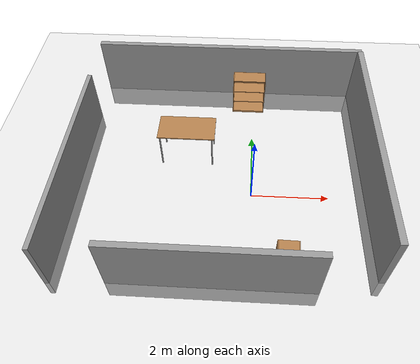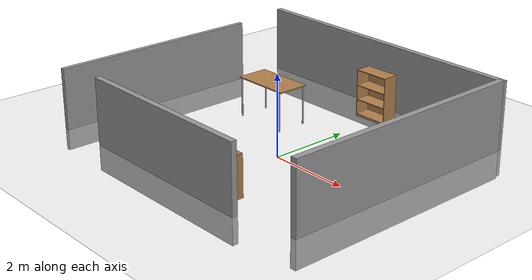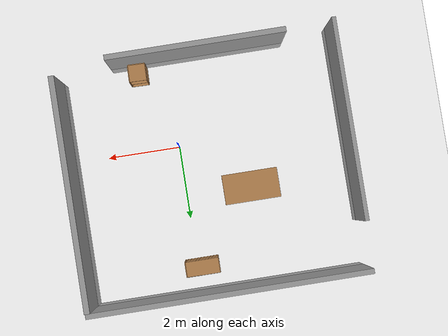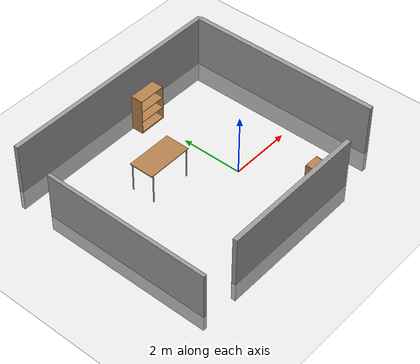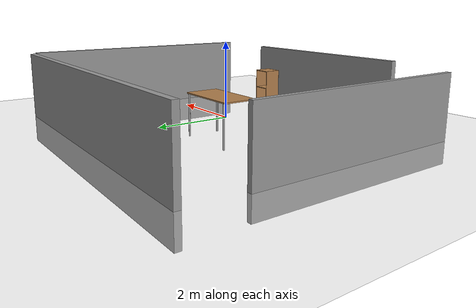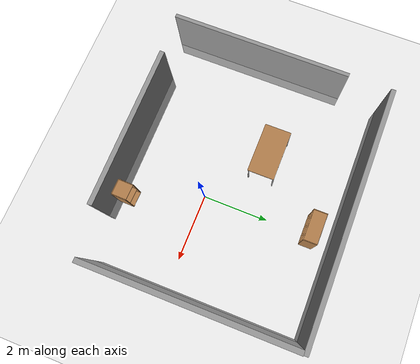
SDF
<sdf version="1.7">
 <world name="default">
  <light name="sun" type="directional">
   <pose>0 0 10 0 -0 0</pose>
   <diffuse>0.8 0.8 0.8 1</diffuse>
   <specular>0.2 0.2 0.2 1</specular>
   <attenuation>
    <range>1000</range>
    <constant>0.9</constant>
    <linear>0.01</linear>
    <quadratic>0.001</quadratic>
   </attenuation>
   <direction>-0.5 0.1 -0.9</direction>
   <spot><inner_angle>0</inner_angle><outer_angle>0</outer_angle><falloff>0</falloff></spot>
  </light>
  <model name="ground_plane">
   <static>1</static>
   <link name="link">
    <collision name="collision">
     <geometry><plane><normal>0 0 1</normal><size>100 100</size></plane></geometry>
     <surface>
      <contact><collide_bitmask>65535</collide_bitmask></contact>
      <friction><ode><mu>100</mu><mu2>50</mu2></ode></friction>
     </surface>
    </collision>
    <visual name="visual">
     <cast_shadows>0</cast_shadows>
     <geometry><plane><normal>0 0 1</normal><size>100 100</size></plane></geometry>
     <material>
      <script><uri>file://media/materials/scripts/gazebo.material</uri><name>Gazebo/Grey</name></script>
     </material>
    </visual>
   </link>
  </model>
  <gravity>0 0 -9.8</gravity>
  <magnetic_field>6e-06 2.3e-05 -4.2e-05</magnetic_field>
  <atmosphere type="adiabatic"/>
  <physics type="ode">
   <max_step_size>0.001</max_step_size>
   <real_time_factor>1</real_time_factor>
   <real_time_update_rate>1000</real_time_update_rate>
  </physics>
  <scene><ambient>0.4 0.4 0.4 1</ambient><background>0.7 0.7 0.7 1</background><shadows>1</shadows></scene>
  <spherical_coordinates>
   <surface_model>EARTH_WGS84</surface_model>
   <latitude_deg>0</latitude_deg>
   <longitude_deg>0</longitude_deg>
   <elevation>0</elevation>
   <heading_deg>0</heading_deg>
  </spherical_coordinates>
  <model name="table">
   <static>1</static>
   <link name="link">
    <collision name="surface">
     <pose>0 0 1 0 -0 0</pose>
     <geometry><box><size>1.5 0.8 0.03</size></box></geometry>
     <surface><friction><ode><mu>0.6</mu><mu2>0.6</mu2></ode></friction></surface>
    </collision>
    <visual name="visual1">
     <pose>0 0 1 0 -0 0</pose>
     <geometry><box><size>1.5 0.8 0.03</size></box></geometry>
     <material>
      <script><uri>file://media/materials/scripts/gazebo.material</uri><name>Gazebo/Wood</name></script>
     </material>
    </visual>
    <collision name="front_left_leg">
     <pose>0.68 0.38 0.5 0 -0 0</pose>
     <geometry><cylinder><radius>0.02</radius><length>1</length></cylinder></geometry>
    </collision>
    <visual name="front_left_leg">
     <pose>0.68 0.38 0.5 0 -0 0</pose>
     <geometry><cylinder><radius>0.02</radius><length>1</length></cylinder></geometry>
     <material>
      <script><uri>file://media/materials/scripts/gazebo.material</uri><name>Gazebo/Grey</name></script>
     </material>
    </visual>
    <collision name="front_right_leg">
     <pose>0.68 -0.38 0.5 0 -0 0</pose>
     <geometry><cylinder><radius>0.02</radius><length>1</length></cylinder></geometry>
    </collision>
    <visual name="front_right_leg">
     <pose>0.68 -0.38 0.5 0 -0 0</pose>
     <geometry><cylinder><radius>0.02</radius><length>1</length></cylinder></geometry>
     <material>
      <script><uri>file://media/materials/scripts/gazebo.material</uri><name>Gazebo/Grey</name></script>
     </material>
    </visual>
    <collision name="back_right_leg">
     <pose>-0.68 -0.38 0.5 0 -0 0</pose>
     <geometry><cylinder><radius>0.02</radius><length>1</length></cylinder></geometry>
    </collision>
    <visual name="back_right_leg">
     <pose>-0.68 -0.38 0.5 0 -0 0</pose>
     <geometry><cylinder><radius>0.02</radius><length>1</length></cylinder></geometry>
     <material>
      <script><uri>file://media/materials/scripts/gazebo.material</uri><name>Gazebo/Grey</name></script>
     </material>
    </visual>
    <collision name="back_left_leg">
     <pose>-0.68 0.38 0.5 0 -0 0</pose>
     <geometry><cylinder><radius>0.02</radius><length>1</length></cylinder></geometry>
    </collision>
    <visual name="back_left_leg">
     <pose>-0.68 0.38 0.5 0 -0 0</pose>
     <geometry><cylinder><radius>0.02</radius><length>1</length></cylinder></geometry>
     <material>
      <script><uri>file://media/materials/scripts/gazebo.material</uri><name>Gazebo/Grey</name></script>
     </material>
    </visual>
   </link>
   <pose>-1.7546 1.39164 0 0 -0 0</pose>
  </model>
  <model name="bookshelf">
   <static>1</static>
   <link name="link">
    <inertial><mass>1</mass></inertial>
    <collision name="back">
     <pose>0 0.005 0.6 0 -0 0</pose>
     <geometry><box><size>0.9 0.01 1.2</size></box></geometry>
    </collision>
    <visual name="visual1">
     <pose>0 0.005 0.6 0 -0 0</pose>
     <geometry><box><size>0.9 0.01 1.2</size></box></geometry>
     <material>
      <script><uri>file://media/materials/scripts/gazebo.material</uri><name>Gazebo/Wood</name></script>
     </material>
    </visual>
    <collision name="left_side">
     <pose>0.45 -0.195 0.6 0 -0 0</pose>
     <geometry><box><size>0.02 0.4 1.2</size></box></geometry>
    </collision>
    <visual name="visual2">
     <pose>0.45 -0.195 0.6 0 -0 0</pose>
     <geometry><box><size>0.02 0.4 1.2</size></box></geometry>
     <material>
      <script><uri>file://media/materials/scripts/gazebo.material</uri><name>Gazebo/Wood</name></script>
     </material>
    </visual>
    <collision name="right_side">
     <pose>-0.45 -0.195 0.6 0 -0 0</pose>
     <geometry><box><size>0.02 0.4 1.2</size></box></geometry>
    </collision>
    <visual name="visual3">
     <pose>-0.45 -0.195 0.6 0 -0 0</pose>
     <geometry><box><size>0.02 0.4 1.2</size></box></geometry>
     <material>
      <script><uri>file://media/materials/scripts/gazebo.material</uri><name>Gazebo/Wood</name></script>
     </material>
    </visual>
    <collision name="bottom">
     <pose>0 -0.195 0.03 0 -0 0</pose>
     <geometry><box><size>0.88 0.4 0.06</size></box></geometry>
    </collision>
    <visual name="visual4">
     <pose>0 -0.195 0.03 0 -0 0</pose>
     <geometry><box><size>0.88 0.4 0.06</size></box></geometry>
     <material>
      <script><uri>file://media/materials/scripts/gazebo.material</uri><name>Gazebo/Wood</name></script>
     </material>
    </visual>
    <collision name="top">
     <pose>0 -0.195 1.19 0 -0 0</pose>
     <geometry><box><size>0.88 0.4 0.02</size></box></geometry>
    </collision>
    <visual name="visual5">
     <pose>0 -0.195 1.19 0 -0 0</pose>
     <geometry><box><size>0.88 0.4 0.02</size></box></geometry>
     <material>
      <script><uri>file://media/materials/scripts/gazebo.material</uri><name>Gazebo/Wood</name></script>
     </material>
    </visual>
    <collision name="low_shelf">
     <pose>0 -0.195 0.43 0 -0 0</pose>
     <geometry><box><size>0.88 0.4 0.02</size></box></geometry>
    </collision>
    <visual name="visual6">
     <pose>0 -0.195 0.43 0 -0 0</pose>
     <geometry><box><size>0.88 0.4 0.02</size></box></geometry>
     <material>
      <script><uri>file://media/materials/scripts/gazebo.material</uri><name>Gazebo/Wood</name></script>
     </material>
    </visual>
    <collision name="high_shelf">
     <pose>0 -0.195 0.8 0 -0 0</pose>
     <geometry><box><size>0.88 0.4 0.02</size></box></geometry>
    </collision>
    <visual name="visual7">
     <pose>0 -0.195 0.8 0 -0 0</pose>
     <geometry><box><size>0.88 0.4 0.02</size></box></geometry>
     <material>
      <script><uri>file://media/materials/scripts/gazebo.material</uri><name>Gazebo/Wood</name></script>
     </material>
    </visual>
   </link>
   <pose>-0.132845 3.51684 0 0 -0 0</pose>
  </model>
  <model name="unit_box">
   <pose>-0.735336 4.07769 0.5 0 -0 0</pose>
   <link name="link">
    <inertial>
     <mass>1</mass>
     <inertia>
      <ixx>0.166667</ixx>
      <ixy>0</ixy>
      <ixz>0</ixz>
      <iyy>0.166667</iyy>
      <iyz>0</iyz>
      <izz>0.166667</izz>
     </inertia>
    </inertial>
    <collision name="collision"><geometry><box><size>7.59355 0.140713 2.34994</size></box></geometry></collision>
    <visual name="visual">
     <geometry><box><size>7.59355 0.140713 2.34994</size></box></geometry>
     <material>
      <script><name>Gazebo/Grey</name><uri>file://media/materials/scripts/gazebo.material</uri></script>
     </material>
    </visual>
   </link>
  </model>
  <model name="unit_box_0">
   <pose>-4.58495 0.047705 0.5 0 -0 0</pose>
   <link name="link">
    <inertial>
     <mass>1</mass>
     <inertia>
      <ixx>0.166667</ixx>
      <ixy>0</ixy>
      <ixz>0</ixz>
      <iyy>0.166667</iyy>
      <iyz>0</iyz>
      <izz>0.166667</izz>
     </inertia>
    </inertial>
    <collision name="collision"><geometry><box><size>0.113278 5.44878 2.06735</size></box></geometry></collision>
    <visual name="visual">
     <geometry><box><size>0.113278 5.44878 2.06735</size></box></geometry>
     <material>
      <script><name>Gazebo/Grey</name><uri>file://media/materials/scripts/gazebo.material</uri></script>
     </material>
    </visual>
   </link>
  </model>
  <model name="unit_box_1">
   <pose>-0.857781 -2.53231 0.5 0 -0 0</pose>
   <link name="link">
    <inertial>
     <mass>1</mass>
     <inertia>
      <ixx>0.166667</ixx>
      <ixy>0</ixy>
      <ixz>0</ixz>
      <iyy>0.166667</iyy>
      <iyz>0</iyz>
      <izz>0.166667</izz>
     </inertia>
    </inertial>
    <collision name="collision"><geometry><box><size>4.84779 0.145237 2.3061</size></box></geometry></collision>
    <visual name="visual">
     <geometry><box><size>4.84779 0.145237 2.3061</size></box></geometry>
     <material>
      <script><name>Gazebo/Grey</name><uri>file://media/materials/scripts/gazebo.material</uri></script>
     </material>
    </visual>
   </link>
  </model>
  <model name="unit_box_2">
   <pose>3.00405 0.87424 0.5 0 -0 0</pose>
   <link name="link">
    <inertial>
     <mass>1</mass>
     <inertia>
      <ixx>0.166667</ixx>
      <ixy>0</ixy>
      <ixz>0</ixz>
      <iyy>0.166667</iyy>
      <iyz>0</iyz>
      <izz>0.166667</izz>
     </inertia>
    </inertial>
    <collision name="collision"><geometry><box><size>0.154905 6.2774 2.40599</size></box></geometry></collision>
    <visual name="visual">
     <geometry><box><size>0.154905 6.2774 2.40599</size></box></geometry>
     <material>
      <script><name>Gazebo/Grey</name><uri>file://media/materials/scripts/gazebo.material</uri></script>
     </material>
    </visual>
   </link>
  </model>
  <model name="cabinet">
   <static>1</static>
   <link name="cabinet_bottom_plate">
    <inertial>
     <pose>0 0 -1 0 -0 0</pose>
     <inertia><ixx>2.05</ixx><ixy>0</ixy><ixz>0</ixz><iyy>2.05</iyy><iyz>0</iyz><izz>2.05</izz></inertia>
     <mass>25</mass>
    </inertial>
    <collision name="cabinet_bottom_plate_geom">
     <pose>0 0 0.01 0 -0 0</pose>
     <geometry><box><size>0.45 0.45 0.02</size></box></geometry>
    </collision>
    <visual name="cabinet_bottom_plate_geom_visual">
     <pose>0 0 0.01 0 -0 0</pose>
     <geometry><box><size>0.45 0.45 0.02</size></box></geometry>
     <material>
      <script><uri>file://media/materials/scripts/gazebo.material</uri><name>Gazebo/Wood</name></script>
     </material>
    </visual>
    <collision name="cabinet_bottom_plate_geom_cabinet_back_plate">
     <pose>0.235 0 0.51 0 -0 0</pose>
     <geometry><box><size>0.02 0.45 1.02</size></box></geometry>
    </collision>
    <visual name="cabinet_bottom_plate_geom_cabinet_back_plate_visual">
     <pose>0.235 0 0.51 0 -0 0</pose>
     <geometry><box><size>0.02 0.45 1.02</size></box></geometry>
     <material>
      <script><uri>file://media/materials/scripts/gazebo.material</uri><name>Gazebo/Wood</name></script>
     </material>
    </visual>
    <collision name="cabinet_bottom_plate_geom_cabinet_left_plate">
     <pose>0 0.235 0.51 0 -0 0</pose>
     <geometry><box><size>0.45 0.02 1.02</size></box></geometry>
    </collision>
    <visual name="cabinet_bottom_plate_geom_cabinet_left_plate_visual">
     <pose>0 0.235 0.51 0 -0 0</pose>
     <geometry><box><size>0.45 0.02 1.02</size></box></geometry>
     <material>
      <script><uri>file://media/materials/scripts/gazebo.material</uri><name>Gazebo/Wood</name></script>
     </material>
    </visual>
    <collision name="cabinet_bottom_plate_geom_cabinet_middle_plate">
     <pose>0 0 0.51 0 -0 0</pose>
     <geometry><box><size>0.45 0.45 0.02</size></box></geometry>
    </collision>
    <visual name="cabinet_bottom_plate_geom_cabinet_middle_plate_visual">
     <pose>0 0 0.51 0 -0 0</pose>
     <geometry><box><size>0.45 0.45 0.02</size></box></geometry>
     <material>
      <script><uri>file://media/materials/scripts/gazebo.material</uri><name>Gazebo/Wood</name></script>
     </material>
    </visual>
    <collision name="cabinet_bottom_plate_geom_cabinet_right_plate">
     <pose>0 -0.235 0.51 0 -0 0</pose>
     <geometry><box><size>0.45 0.02 1.02</size></box></geometry>
    </collision>
    <visual name="cabinet_bottom_plate_geom_cabinet_right_plate_visual">
     <pose>0 -0.235 0.51 0 -0 0</pose>
     <geometry><box><size>0.45 0.02 1.02</size></box></geometry>
     <material>
      <script><uri>file://media/materials/scripts/gazebo.material</uri><name>Gazebo/Wood</name></script>
     </material>
    </visual>
    <collision name="cabinet_bottom_plate_geom_cabinet_top_plate">
     <pose>0 0 1.01 0 -0 0</pose>
     <geometry><box><size>0.45 0.45 0.02</size></box></geometry>
    </collision>
    <visual name="cabinet_bottom_plate_geom_cabinet_top_plate_visual">
     <pose>0 0 1.01 0 -0 0</pose>
     <geometry><box><size>0.45 0.45 0.02</size></box></geometry>
     <material>
      <script><uri>file://media/materials/scripts/gazebo.material</uri><name>Gazebo/Wood</name></script>
     </material>
    </visual>
   </link>
   <pose>0.800596 -2.09937 0 0 0 -1.59429</pose>
  </model>
 </world>
</sdf>
